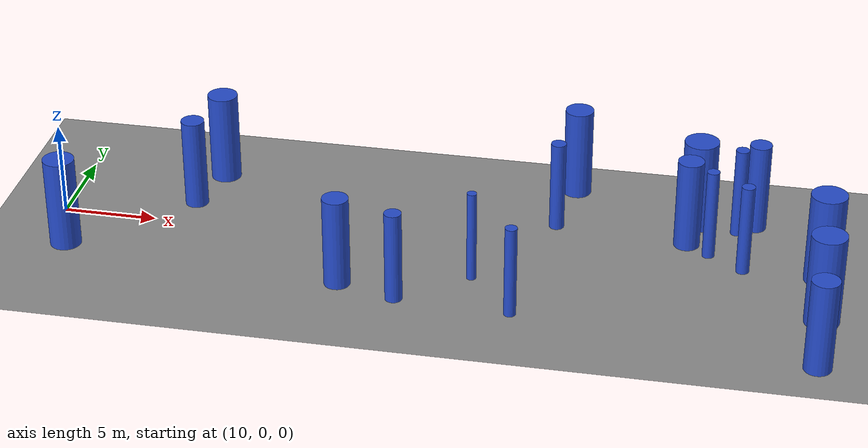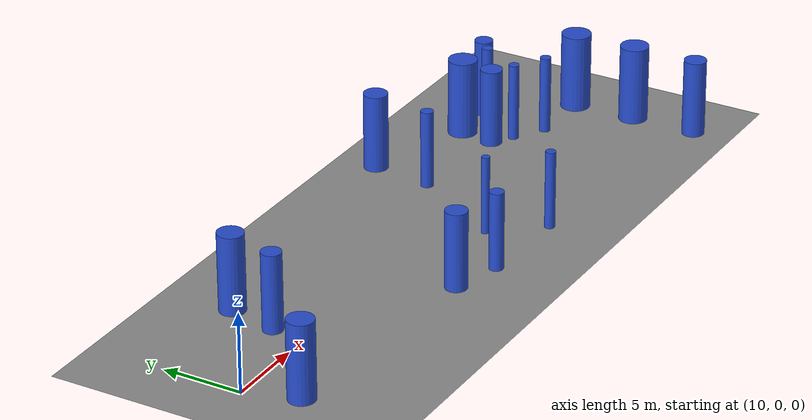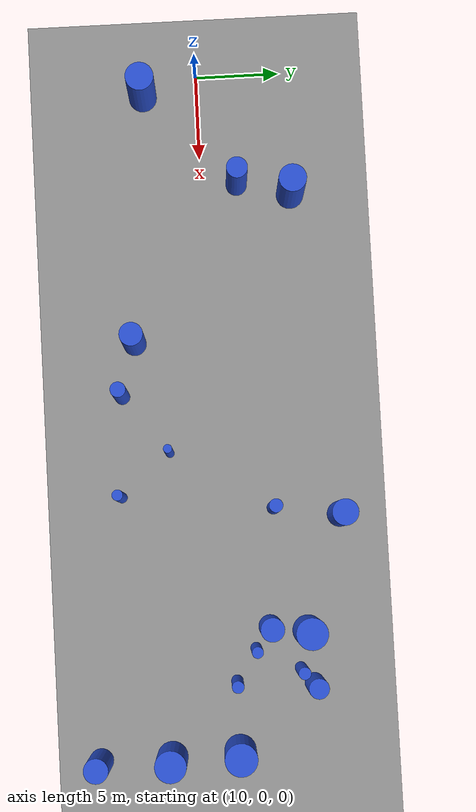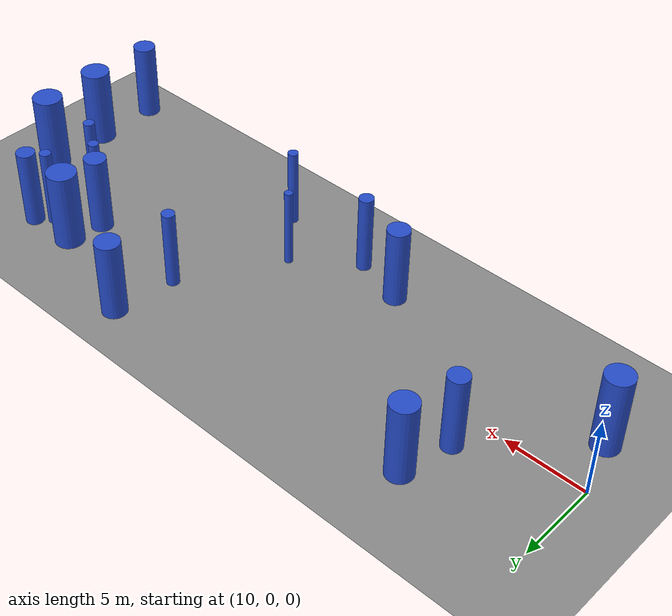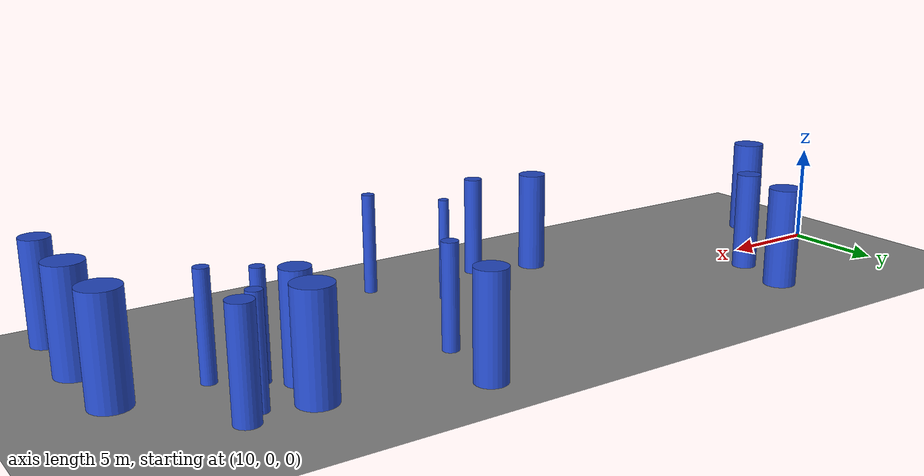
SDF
<sdf version="1.7">
 <world name="forest_randomization_v1">
  <gravity>0 0 -9.8</gravity>
  <light name="sun" type="directional">
   <pose>30 0 20 0 -0 0</pose>
   <diffuse>0.8 0.8 0.8 1</diffuse>
   <specular>0.2 0.2 0.2 1</specular>
   <direction>-0.5 0.5 -1</direction>
   <attenuation><range>10</range></attenuation>
   <spot><inner_angle>0</inner_angle><outer_angle>0</outer_angle><falloff>0</falloff></spot>
  </light>
  <model name="forest_ground_60x20">
   <static>1</static>
   <pose>30 0 0 0 -0 0</pose>
   <link name="link">
    <collision name="collision">
     <geometry><plane><normal>0 0 1</normal><size>60 20</size></plane></geometry>
    </collision>
    <visual name="visual">
     <cast_shadows>0</cast_shadows>
     <geometry><plane><normal>0 0 1</normal><size>60 20</size></plane></geometry>
     <material><ambient>0.45 0.45 0.45 1</ambient><diffuse>0.55 0.55 0.55 1</diffuse></material>
    </visual>
   </link>
  </model>
  <physics name="default_physics" type="ode">
   <max_step_size>0.001</max_step_size>
   <real_time_update_rate>1000</real_time_update_rate>
   <real_time_factor>1</real_time_factor>
  </physics>
  <scene>
   <ambient>0.4 0.4 0.4 1</ambient>
   <background>0.7 0.7 0.7 1</background>
   <shadows>1</shadows>
   <grid>1</grid>
  </scene>
  <magnetic_field>6e-06 2.3e-05 -4.2e-05</magnetic_field>
  <atmosphere type="adiabatic"/>
  <spherical_coordinates>
   <surface_model>EARTH_WGS84</surface_model>
   <latitude_deg>0</latitude_deg>
   <longitude_deg>0</longitude_deg>
   <elevation>0</elevation>
   <heading_deg>0</heading_deg>
  </spherical_coordinates>
  <model name="sparse_0">
   <static>0</static>
   <link name="link">
    <inertial>
     <mass>2</mass>
     <inertia><ixx>4.50986</ixx><ixy>0</ixy><ixz>0</ixz><iyy>4.50986</iyy><iyz>0</iyz><izz>0.686397</izz></inertia>
    </inertial>
    <collision name="collision">
     <geometry><cylinder><length>5</length><radius>0.82849</radius></cylinder></geometry>
     <surface><contact><collide_without_contact>1</collide_without_contact></contact></surface>
    </collision>
    <visual name="visual">
     <geometry><cylinder><length>5</length><radius>0.82849</radius></cylinder></geometry>
     <material>
      <script><uri>file://media/materials/scripts/gazebo.material</uri><name>Gazebo/Blue</name></script>
     </material>
    </visual>
    <gravity>0</gravity>
   </link>
   <pose>11.1054 -3.21982 2.5 0 -0 0</pose>
  </model>
  <model name="sparse_1">
   <static>0</static>
   <link name="link">
    <inertial>
     <mass>2</mass>
     <inertia><ixx>4.35945</ixx><ixy>0</ixy><ixz>0</ixz><iyy>4.35945</iyy><iyz>0</iyz><izz>0.38557</izz></inertia>
    </inertial>
    <collision name="collision">
     <geometry><cylinder><length>5</length><radius>0.620942</radius></cylinder></geometry>
     <surface><contact><collide_without_contact>1</collide_without_contact></contact></surface>
    </collision>
    <visual name="visual">
     <geometry><cylinder><length>5</length><radius>0.620942</radius></cylinder></geometry>
     <material>
      <script><uri>file://media/materials/scripts/gazebo.material</uri><name>Gazebo/Blue</name></script>
     </material>
    </visual>
    <gravity>0</gravity>
   </link>
   <pose>16.716 2.13837 2.5 0 -0 0</pose>
  </model>
  <model name="sparse_2">
   <static>0</static>
   <link name="link">
    <inertial>
     <mass>2</mass>
     <inertia><ixx>4.49602</ixx><ixy>0</ixy><ixz>0</ixz><iyy>4.49602</iyy><iyz>0</iyz><izz>0.658699</izz></inertia>
    </inertial>
    <collision name="collision">
     <geometry><cylinder><length>5</length><radius>0.811603</radius></cylinder></geometry>
     <surface><contact><collide_without_contact>1</collide_without_contact></contact></surface>
    </collision>
    <visual name="visual">
     <geometry><cylinder><length>5</length><radius>0.811603</radius></cylinder></geometry>
     <material>
      <script><uri>file://media/materials/scripts/gazebo.material</uri><name>Gazebo/Blue</name></script>
     </material>
    </visual>
    <gravity>0</gravity>
   </link>
   <pose>17.48 5.31058 2.5 0 -0 0</pose>
  </model>
  <model name="medium_3">
   <static>0</static>
   <link name="link">
    <inertial>
     <mass>2</mass>
     <inertia><ixx>4.40299</ixx><ixy>0</ixy><ixz>0</ixz><iyy>4.40299</iyy><iyz>0</iyz><izz>0.472644</izz></inertia>
    </inertial>
    <collision name="collision">
     <geometry><cylinder><length>5</length><radius>0.687491</radius></cylinder></geometry>
     <surface><contact><collide_without_contact>1</collide_without_contact></contact></surface>
    </collision>
    <visual name="visual">
     <geometry><cylinder><length>5</length><radius>0.687491</radius></cylinder></geometry>
     <material>
      <script><uri>file://media/materials/scripts/gazebo.material</uri><name>Gazebo/Blue</name></script>
     </material>
    </visual>
    <gravity>0</gravity>
   </link>
   <pose>26.0305 -4.40325 2.5 0 -0 0</pose>
  </model>
  <model name="medium_4">
   <static>0</static>
   <link name="link">
    <inertial>
     <mass>2</mass>
     <inertia><ixx>4.24609</ixx><ixy>0</ixy><ixz>0</ixz><iyy>4.24609</iyy><iyz>0</iyz><izz>0.15884</izz></inertia>
    </inertial>
    <collision name="collision">
     <geometry><cylinder><length>5</length><radius>0.398547</radius></cylinder></geometry>
     <surface><contact><collide_without_contact>1</collide_without_contact></contact></surface>
    </collision>
    <visual name="visual">
     <geometry><cylinder><length>5</length><radius>0.398547</radius></cylinder></geometry>
     <material>
      <script><uri>file://media/materials/scripts/gazebo.material</uri><name>Gazebo/Blue</name></script>
     </material>
    </visual>
    <gravity>0</gravity>
   </link>
   <pose>36.2003 3.34733 2.5 0 -0 0</pose>
  </model>
  <model name="medium_5">
   <static>0</static>
   <link name="link">
    <inertial>
     <mass>2</mass>
     <inertia><ixx>4.26755</ixx><ixy>0</ixy><ixz>0</ixz><iyy>4.26755</iyy><iyz>0</iyz><izz>0.201758</izz></inertia>
    </inertial>
    <collision name="collision">
     <geometry><cylinder><length>5</length><radius>0.449175</radius></cylinder></geometry>
     <surface><contact><collide_without_contact>1</collide_without_contact></contact></surface>
    </collision>
    <visual name="visual">
     <geometry><cylinder><length>5</length><radius>0.449175</radius></cylinder></geometry>
     <material>
      <script><uri>file://media/materials/scripts/gazebo.material</uri><name>Gazebo/Blue</name></script>
     </material>
    </visual>
    <gravity>0</gravity>
   </link>
   <pose>29.1664 -5.29423 2.5 0 -0 0</pose>
  </model>
  <model name="medium_6">
   <static>0</static>
   <link name="link">
    <inertial>
     <mass>2</mass>
     <inertia><ixx>4.21668</ixx><ixy>0</ixy><ixz>0</ixz><iyy>4.21668</iyy><iyz>0</iyz><izz>0.100017</izz></inertia>
    </inertial>
    <collision name="collision">
     <geometry><cylinder><length>5</length><radius>0.316255</radius></cylinder></geometry>
     <surface><contact><collide_without_contact>1</collide_without_contact></contact></surface>
    </collision>
    <visual name="visual">
     <geometry><cylinder><length>5</length><radius>0.316255</radius></cylinder></geometry>
     <material>
      <script><uri>file://media/materials/scripts/gazebo.material</uri><name>Gazebo/Blue</name></script>
     </material>
    </visual>
    <gravity>0</gravity>
   </link>
   <pose>35.1632 -5.59395 2.5 0 -0 0</pose>
  </model>
  <model name="medium_7">
   <static>0</static>
   <link name="link">
    <inertial>
     <mass>2</mass>
     <inertia><ixx>4.45765</ixx><ixy>0</ixy><ixz>0</ixz><iyy>4.45765</iyy><iyz>0</iyz><izz>0.581961</izz></inertia>
    </inertial>
    <collision name="collision">
     <geometry><cylinder><length>5</length><radius>0.762864</radius></cylinder></geometry>
     <surface><contact><collide_without_contact>1</collide_without_contact></contact></surface>
    </collision>
    <visual name="visual">
     <geometry><cylinder><length>5</length><radius>0.762864</radius></cylinder></geometry>
     <material>
      <script><uri>file://media/materials/scripts/gazebo.material</uri><name>Gazebo/Blue</name></script>
     </material>
    </visual>
    <gravity>0</gravity>
   </link>
   <pose>36.766 7.25429 2.5 0 -0 0</pose>
  </model>
  <model name="medium_8">
   <static>0</static>
   <link name="link">
    <inertial>
     <mass>2</mass>
     <inertia>
      <ixx>4.19866</ixx>
      <ixy>0</ixy>
      <ixz>0</ixz>
      <iyy>4.19866</iyy>
      <iyz>0</iyz>
      <izz>0.0639894</izz>
     </inertia>
    </inertial>
    <collision name="collision">
     <geometry><cylinder><length>5</length><radius>0.252961</radius></cylinder></geometry>
     <surface><contact><collide_without_contact>1</collide_without_contact></contact></surface>
    </collision>
    <visual name="visual">
     <geometry><cylinder><length>5</length><radius>0.252961</radius></cylinder></geometry>
     <material>
      <script><uri>file://media/materials/scripts/gazebo.material</uri><name>Gazebo/Blue</name></script>
     </material>
    </visual>
    <gravity>0</gravity>
   </link>
   <pose>32.6767 -2.62285 2.5 0 -0 0</pose>
  </model>
  <model name="dense_9">
   <static>0</static>
   <link name="link">
    <inertial>
     <mass>2</mass>
     <inertia><ixx>4.58813</ixx><ixy>0</ixy><ixz>0</ixz><iyy>4.58813</iyy><iyz>0</iyz><izz>0.84293</izz></inertia>
    </inertial>
    <collision name="collision">
     <geometry><cylinder><length>5</length><radius>0.918112</radius></cylinder></geometry>
     <surface><contact><collide_without_contact>1</collide_without_contact></contact></surface>
    </collision>
    <visual name="visual">
     <geometry><cylinder><length>5</length><radius>0.918112</radius></cylinder></geometry>
     <material>
      <script><uri>file://media/materials/scripts/gazebo.material</uri><name>Gazebo/Blue</name></script>
     </material>
    </visual>
    <gravity>0</gravity>
   </link>
   <pose>43.5261 5.00194 2.5 0 -0 0</pose>
  </model>
  <model name="dense_10">
   <static>0</static>
   <link name="link">
    <inertial>
     <mass>2</mass>
     <inertia><ixx>4.41829</ixx><ixy>0</ixy><ixz>0</ixz><iyy>4.41829</iyy><iyz>0</iyz><izz>0.503241</izz></inertia>
    </inertial>
    <collision name="collision">
     <geometry><cylinder><length>5</length><radius>0.709395</radius></cylinder></geometry>
     <surface><contact><collide_without_contact>1</collide_without_contact></contact></surface>
    </collision>
    <visual name="visual">
     <geometry><cylinder><length>5</length><radius>0.709395</radius></cylinder></geometry>
     <material>
      <script><uri>file://media/materials/scripts/gazebo.material</uri><name>Gazebo/Blue</name></script>
     </material>
    </visual>
    <gravity>0</gravity>
   </link>
   <pose>50.5117 -7.51013 2.5 0 -0 0</pose>
  </model>
  <model name="dense_11">
   <static>0</static>
   <link name="link">
    <inertial>
     <mass>2</mass>
     <inertia><ixx>4.57909</ixx><ixy>0</ixy><ixz>0</ixz><iyy>4.57909</iyy><iyz>0</iyz><izz>0.824848</izz></inertia>
    </inertial>
    <collision name="collision">
     <geometry><cylinder><length>5</length><radius>0.908211</radius></cylinder></geometry>
     <surface><contact><collide_without_contact>1</collide_without_contact></contact></surface>
    </collision>
    <visual name="visual">
     <geometry><cylinder><length>5</length><radius>0.908211</radius></cylinder></geometry>
     <material>
      <script><uri>file://media/materials/scripts/gazebo.material</uri><name>Gazebo/Blue</name></script>
     </material>
    </visual>
    <gravity>0</gravity>
   </link>
   <pose>50.4984 -3.32998 2.5 0 -0 0</pose>
  </model>
  <model name="dense_12">
   <static>0</static>
   <link name="link">
    <inertial>
     <mass>2</mass>
     <inertia><ixx>4.6069</ixx><ixy>0</ixy><ixz>0</ixz><iyy>4.6069</iyy><iyz>0</iyz><izz>0.880464</izz></inertia>
    </inertial>
    <collision name="collision">
     <geometry><cylinder><length>5</length><radius>0.938331</radius></cylinder></geometry>
     <surface><contact><collide_without_contact>1</collide_without_contact></contact></surface>
    </collision>
    <visual name="visual">
     <geometry><cylinder><length>5</length><radius>0.938331</radius></cylinder></geometry>
     <material>
      <script><uri>file://media/materials/scripts/gazebo.material</uri><name>Gazebo/Blue</name></script>
     </material>
    </visual>
    <gravity>0</gravity>
   </link>
   <pose>50.316 0.654095 2.5 0 -0 0</pose>
  </model>
  <model name="dense_13">
   <static>0</static>
   <link name="link">
    <inertial>
     <mass>2</mass>
     <inertia><ixx>4.22743</ixx><ixy>0</ixy><ixz>0</ixz><iyy>4.22743</iyy><iyz>0</iyz><izz>0.121518</izz></inertia>
    </inertial>
    <collision name="collision">
     <geometry><cylinder><length>5</length><radius>0.348594</radius></cylinder></geometry>
     <surface><contact><collide_without_contact>1</collide_without_contact></contact></surface>
    </collision>
    <visual name="visual">
     <geometry><cylinder><length>5</length><radius>0.348594</radius></cylinder></geometry>
     <material>
      <script><uri>file://media/materials/scripts/gazebo.material</uri><name>Gazebo/Blue</name></script>
     </material>
    </visual>
    <gravity>0</gravity>
   </link>
   <pose>46.2652 0.68071 2.5 0 -0 0</pose>
  </model>
  <model name="dense_14">
   <static>0</static>
   <link name="link">
    <inertial>
     <mass>2</mass>
     <inertia><ixx>4.23026</ixx><ixy>0</ixy><ixz>0</ixz><iyy>4.23026</iyy><iyz>0</iyz><izz>0.127183</izz></inertia>
    </inertial>
    <collision name="collision">
     <geometry><cylinder><length>5</length><radius>0.356628</radius></cylinder></geometry>
     <surface><contact><collide_without_contact>1</collide_without_contact></contact></surface>
    </collision>
    <visual name="visual">
     <geometry><cylinder><length>5</length><radius>0.356628</radius></cylinder></geometry>
     <material>
      <script><uri>file://media/materials/scripts/gazebo.material</uri><name>Gazebo/Blue</name></script>
     </material>
    </visual>
    <gravity>0</gravity>
   </link>
   <pose>45.6905 4.45966 2.5 0 -0 0</pose>
  </model>
  <model name="dense_15">
   <static>0</static>
   <link name="link">
    <inertial>
     <mass>2</mass>
     <inertia><ixx>4.40329</ixx><ixy>0</ixy><ixz>0</ixz><iyy>4.40329</iyy><iyz>0</iyz><izz>0.473242</izz></inertia>
    </inertial>
    <collision name="collision">
     <geometry><cylinder><length>5</length><radius>0.687926</radius></cylinder></geometry>
     <surface><contact><collide_without_contact>1</collide_without_contact></contact></surface>
    </collision>
    <visual name="visual">
     <geometry><cylinder><length>5</length><radius>0.687926</radius></cylinder></geometry>
     <material>
      <script><uri>file://media/materials/scripts/gazebo.material</uri><name>Gazebo/Blue</name></script>
     </material>
    </visual>
    <gravity>0</gravity>
   </link>
   <pose>43.1761 2.78614 2.5 0 -0 0</pose>
  </model>
  <model name="dense_16">
   <static>0</static>
   <link name="link">
    <inertial>
     <mass>2</mass>
     <inertia><ixx>4.33567</ixx><ixy>0</ixy><ixz>0</ixz><iyy>4.33567</iyy><iyz>0</iyz><izz>0.337997</izz></inertia>
    </inertial>
    <collision name="collision">
     <geometry><cylinder><length>5</length><radius>0.581375</radius></cylinder></geometry>
     <surface><contact><collide_without_contact>1</collide_without_contact></contact></surface>
    </collision>
    <visual name="visual">
     <geometry><cylinder><length>5</length><radius>0.581375</radius></cylinder></geometry>
     <material>
      <script><uri>file://media/materials/scripts/gazebo.material</uri><name>Gazebo/Blue</name></script>
     </material>
    </visual>
    <gravity>0</gravity>
   </link>
   <pose>46.5869 5.21732 2.5 0 -0 0</pose>
  </model>
  <model name="dense_17">
   <static>0</static>
   <link name="link">
    <inertial>
     <mass>2</mass>
     <inertia><ixx>4.2208</ixx><ixy>0</ixy><ixz>0</ixz><iyy>4.2208</iyy><iyz>0</iyz><izz>0.108275</izz></inertia>
    </inertial>
    <collision name="collision">
     <geometry><cylinder><length>5</length><radius>0.329051</radius></cylinder></geometry>
     <surface><contact><collide_without_contact>1</collide_without_contact></contact></surface>
    </collision>
    <visual name="visual">
     <geometry><cylinder><length>5</length><radius>0.329051</radius></cylinder></geometry>
     <material>
      <script><uri>file://media/materials/scripts/gazebo.material</uri><name>Gazebo/Blue</name></script>
     </material>
    </visual>
    <gravity>0</gravity>
   </link>
   <pose>44.3961 1.88427 2.5 0 -0 0</pose>
  </model>
 </world>
</sdf>
